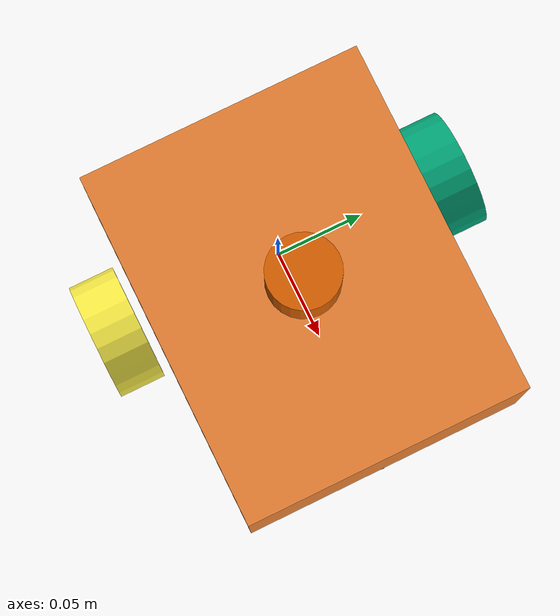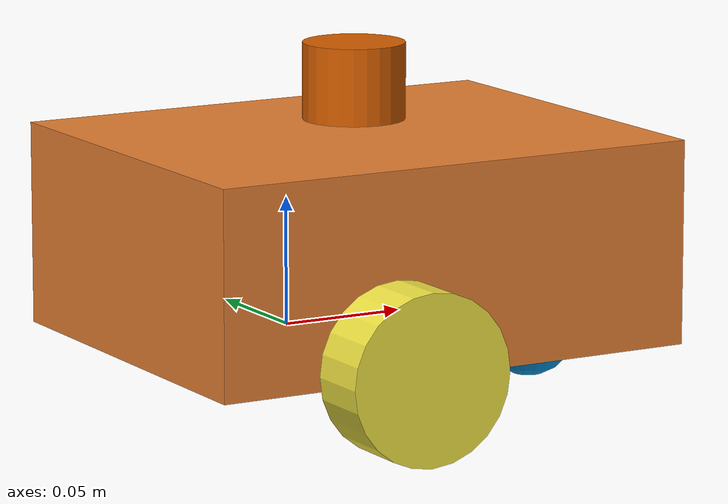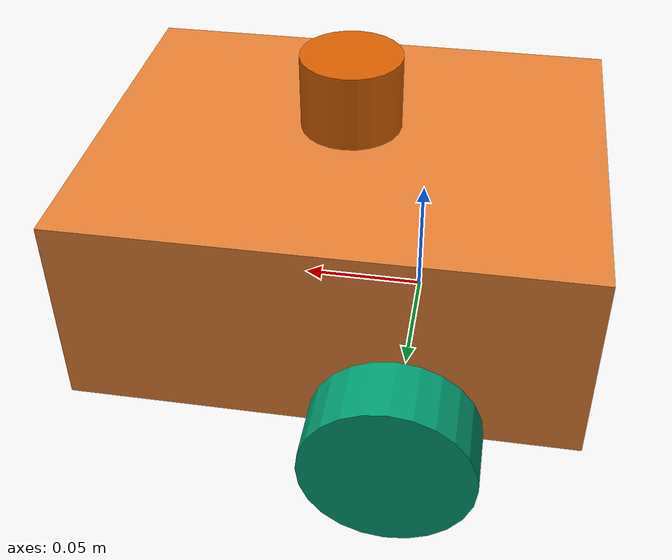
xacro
<?xml version="1.0"?>
<robot name="rover" xmlns:xacro="http://www.ros.org/wiki/xacro">

  <xacro:arg name="robot_name" default="rover" />
  <xacro:arg name="robot_class" default="scout" />
  <xacro:property name="name" value="$(arg robot_name)" />
  <xacro:property name="rclass" value="$(arg robot_class)" />

  <!-- class-dependent physical/sensor parameters -->
  <xacro:property name="is_scout" value="${rclass == 'scout'}" />

  <xacro:property name="chassis_len"   value="${0.20 if is_scout else 0.36}" />
  <xacro:property name="chassis_wid"   value="${0.16 if is_scout else 0.28}" />
  <xacro:property name="chassis_h"     value="${0.08 if is_scout else 0.12}" />
  <xacro:property name="chassis_mass"  value="${1.2  if is_scout else 4.5}" />
  <xacro:property name="wheel_radius"  value="${0.033 if is_scout else 0.05}" />
  <xacro:property name="wheel_width"   value="${0.026 if is_scout else 0.04}" />
  <xacro:property name="wheel_sep"     value="${chassis_wid + wheel_width + 0.01}" />
  <xacro:property name="max_lin_vel"   value="${1.2  if is_scout else 0.6}" />
  <xacro:property name="max_ang_vel"   value="${2.0  if is_scout else 1.0}" />
  <xacro:property name="lidar_range"   value="${6.0  if is_scout else 12.0}" />
  <xacro:property name="lidar_samples" value="${360  if is_scout else 720}" />

  <xacro:property name="chassis_offset_x" value="${0.03 if is_scout else 0.06}" />

  <!-- ===================================================================
       Links
       =================================================================== -->
  <link name="base_link" />

  <link name="chassis_link">
    <visual>
      <geometry><box size="${chassis_len} ${chassis_wid} ${chassis_h}" /></geometry>
      <material name="scout_mat"><color rgba="${0.9 if is_scout else 0.2} 0.5 0.2 1" /></material>
    </visual>
    <collision>
      <geometry><box size="${chassis_len} ${chassis_wid} ${chassis_h}" /></geometry>
    </collision>
    <inertial>
      <mass value="${chassis_mass}" />
      <inertia ixx="0.02" ixy="0" ixz="0" iyy="0.03" iyz="0" izz="0.04" />
    </inertial>
  </link>

  <joint name="base_to_chassis" type="fixed">
    <parent link="base_link" /><child link="chassis_link" />
    <origin xyz="${chassis_offset_x} 0 ${wheel_radius}" rpy="0 0 0" />
  </joint>

  <!-- wheels: macro'd so left/right only differ by Y sign -->
  <xacro:macro name="wheel" params="side y_sign">
    <link name="${side}_wheel_link">
      <visual>
        <origin xyz="0 0 0" rpy="1.5708 0 0" />
        <geometry><cylinder radius="${wheel_radius}" length="${wheel_width}" /></geometry>
      </visual>
      <collision>
        <origin xyz="0 0 0" rpy="1.5708 0 0" />
        <geometry><cylinder radius="${wheel_radius}" length="${wheel_width}" /></geometry>
      </collision>
      <inertial>
        <mass value="0.2" />
        <inertia ixx="0.0005" ixy="0" ixz="0" iyy="0.0005" iyz="0" izz="0.0005" />
      </inertial>
    </link>
    <joint name="${side}_wheel_joint" type="continuous">
      <parent link="base_link" /><child link="${side}_wheel_link" />
      <origin xyz="0 ${y_sign * wheel_sep / 2} 0" rpy="0 0 0" />
      <axis xyz="0 1 0" />
    </joint>
  </xacro:macro>

  <xacro:wheel side="left"  y_sign="1" />
  <xacro:wheel side="right" y_sign="-1" />

  <!-- front caster at the chassis nose (frictionless: see the gazebo block
       for caster_link below) -->
  <link name="caster_link">
    <visual><geometry><sphere radius="${wheel_radius * 0.6}" /></geometry></visual>
    <collision><geometry><sphere radius="${wheel_radius * 0.6}" /></geometry></collision>
    <inertial>
      <mass value="0.1" />
      <inertia ixx="0.0001" ixy="0" ixz="0" iyy="0.0001" iyz="0" izz="0.0001" />
    </inertial>
  </link>
  <joint name="caster_joint" type="fixed">
    <parent link="base_link" /><child link="caster_link" />
    <origin xyz="${chassis_offset_x + chassis_len/2 - wheel_radius*0.6} 0 ${-wheel_radius*0.4}" rpy="0 0 0" />
  </joint>

  <!-- lidar mast -->
  <link name="lidar_link">
    <visual><geometry><cylinder radius="0.02" length="0.03" /></geometry></visual>
    <collision><geometry><cylinder radius="0.02" length="0.03" /></geometry></collision>
    <inertial>
      <mass value="0.05" />
      <inertia ixx="0.00001" ixy="0" ixz="0" iyy="0.00001" iyz="0" izz="0.00001" />
    </inertial>
  </link>
  <joint name="lidar_joint" type="fixed">
    <parent link="chassis_link" /><child link="lidar_link" />
    <origin xyz="0 0 ${chassis_h/2 + 0.02}" rpy="0 0 0" />
  </joint>

  <!-- imu (no visual geometry needed) -->
  <link name="imu_link" />
  <joint name="imu_joint" type="fixed">
    <parent link="chassis_link" /><child link="imu_link" />
    <origin xyz="0 0 0" rpy="0 0 0" />
  </joint>

  <gazebo>
    <plugin filename="libignition-gazebo-diff-drive-system.so"
            name="ignition::gazebo::systems::DiffDrive">
      <left_joint>left_wheel_joint</left_joint>
      <right_joint>right_wheel_joint</right_joint>
      <wheel_separation>${wheel_sep}</wheel_separation>
      <wheel_radius>${wheel_radius}</wheel_radius>
      <!-- Symmetric limits: with only max_linear_acceleration set, stops,
           reverse starts and turns were instantaneous (wheel slip), and the
           per-class speed caps above were never applied. -->
      <max_linear_acceleration>1.0</max_linear_acceleration>
      <min_linear_acceleration>-1.0</min_linear_acceleration>
      <max_angular_acceleration>2.0</max_angular_acceleration>
      <min_angular_acceleration>-2.0</min_angular_acceleration>
      <max_linear_velocity>${max_lin_vel}</max_linear_velocity>
      <min_linear_velocity>${-max_lin_vel}</min_linear_velocity>
      <max_angular_velocity>${max_ang_vel}</max_angular_velocity>
      <min_angular_velocity>${-max_ang_vel}</min_angular_velocity>
      <topic>/model/${name}/cmd_vel</topic>
      <odom_topic>/model/${name}/odometry</odom_topic>
      <tf_topic>/model/${name}/tf</tf_topic>
      <frame_id>${name}/odom</frame_id>
      <child_frame_id>${name}/base_link</child_frame_id>
      <odom_publish_frequency>30</odom_publish_frequency>
    </plugin>

  </gazebo>

  <gazebo reference="lidar_link">
    <sensor name="lidar" type="gpu_lidar">
      <topic>/world/exploration_test/model/${name}/lidar</topic>
      <ignition_frame_id>${name}/lidar_link</ignition_frame_id>
      <update_rate>10</update_rate>
      <always_on>true</always_on>
      <visualize>false</visualize>
      <lidar>
        <scan>
          <horizontal>
            <samples>${lidar_samples}</samples>
            <min_angle>-3.14159</min_angle>
            <max_angle>3.14159</max_angle>
          </horizontal>
        </scan>
        <range>
          <min>0.1</min>
          <max>${lidar_range}</max>
          <resolution>0.01</resolution>
        </range>
      </lidar>
    </sensor>
  </gazebo>

  <!-- Frictionless caster: it now carries real weight, and a mu=1 sphere
       would drag in turns and corrupt odometry. This reference survives
       the URDF->SDF fixed-joint lumping into base_link. -->
  <gazebo reference="caster_link">
    <mu1>0.0</mu1>
    <mu2>0.0</mu2>
  </gazebo>

  <gazebo reference="imu_link">
    <sensor name="imu" type="imu">
      <topic>/model/${name}/imu</topic>
      <frame_id>imu_link</frame_id>
      <update_rate>50</update_rate>
      <always_on>true</always_on>
    </sensor>
  </gazebo>

</robot>
